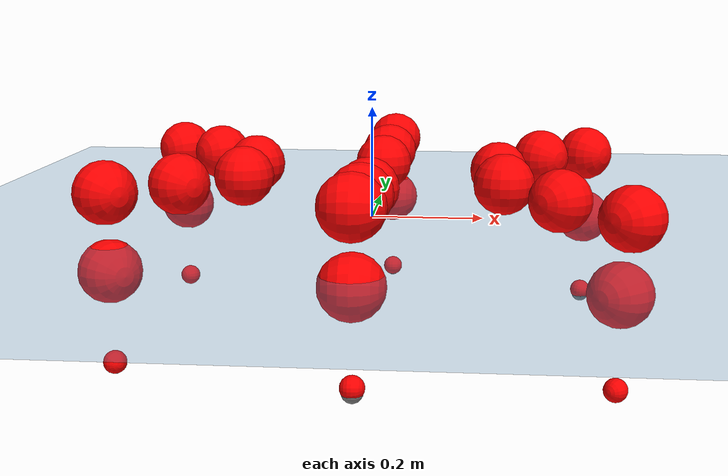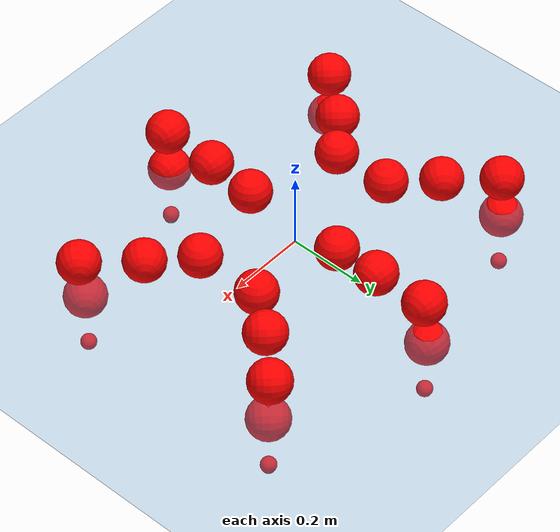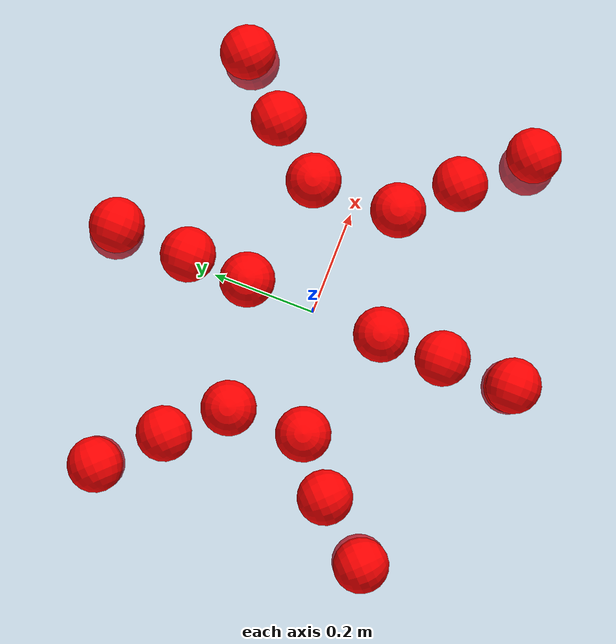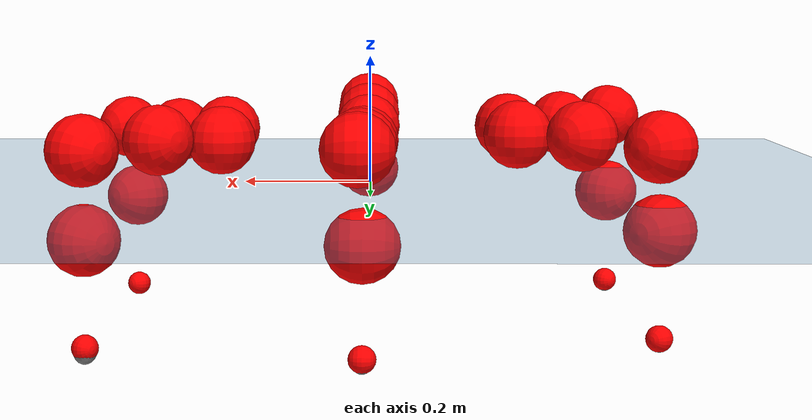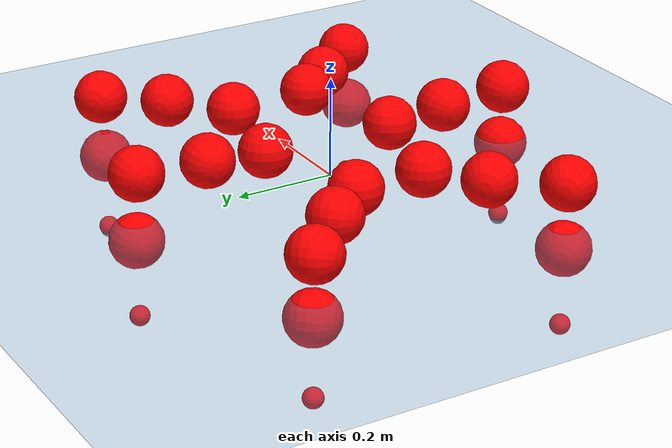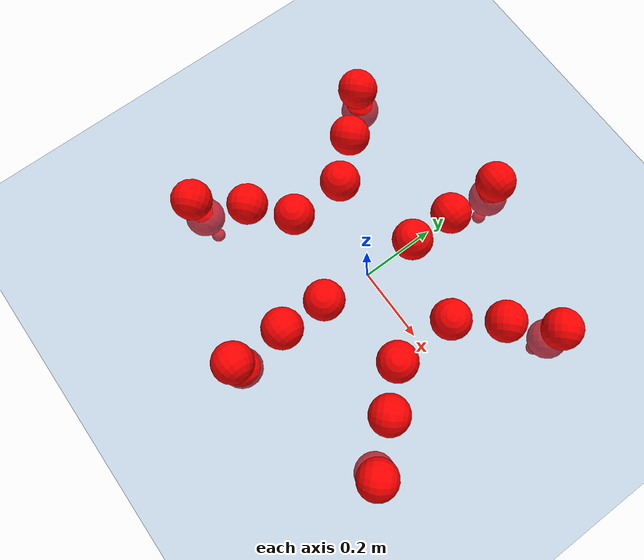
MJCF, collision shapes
<mujoco model="Golem">
  <compiler angle="radian" assetdir="assets" balanceinertia="true" inertiafromgeom="false"/>

  <option timestep="0.005" density="1.2" viscosity="2e-05"/>

  <size nkey="1"/>

  <visual>
    <quality shadowsize="8192"/>
    <map shadowclip="0.5"/>
  </visual>

  <default>
    <default class="/">
      <joint armature="0.01" damping="0.01" frictionloss="0.01"/>
      <geom contype="0" conaffinity="0" group="1" solref="-1000 -80"/>
      <site size="0.01 0.005 0.005" group="5"/>
      <general forcelimited="true" biastype="affine" gainprm="25" biasprm="0 -25 -0.5"/>
      <default class="visual">
        <geom type="mesh" group="2"/>
      </default>
      <default class="collision">
        <geom group="3"/>
      </default>
      <default class="foot">
        <geom size="0.01 0 0" condim="6" group="4" priority="1" solimp="0.015 1 0.01"/>
      </default>
      <default class="reward_collision_sphere">
        <geom group="5" rgba="1 0 0 1"/>
      </default>
    </default>
  </default>

  <asset>
    <texture type="skybox" colorspace="auto" name="//unnamed_texture_0" builtin="gradient" rgb1="0.95 0.95 0.95" rgb2="0.95 0.95 0.95" width="100" height="600"/>
    <texture type="2d" colorspace="auto" name="texplane" builtin="checker" rgb1="0.345 0.575 0.748" rgb2="0.345 0.575 0.748" markrgb="1 1 1" width="512" height="512"/>
    <material name="MatPlane" class="/" texture="texplane" texuniform="true" texrepeat="2 2" specular="0.9"/>
    <mesh name="body" class="/" file="body.stl" scale="0.001 0.001 0.001"/>
    <mesh name="coxa" class="/" file="coxa.stl" scale="0.001 0.001 0.001"/>
    <mesh name="femur" class="/" file="femur.stl" scale="0.001 0.001 0.001"/>
    <mesh name="tibia" class="/" file="tibia.stl" scale="0.001 0.001 0.001"/>
    <mesh name="tarsus" class="/" file="tarsus.stl" scale="0.001 0.001 0.001"/>
  </asset>

  <worldbody>
    <geom name="floor" class="/" size="100 100 0.125" type="plane" group="0" material="MatPlane"/>
    <light name="toplight_shadow" class="/" pos="0 0 5" dir="0.0990148 0.0990148 -0.990148" type="directional" ambient="0.04 0.04 0.04" diffuse="0.55 0.55 0.55" specular="0.12 0.12 0.12"/>
    <light name="toplight_fill" class="/" pos="0 0 5" dir="0.0990148 0.0990148 -0.990148" type="directional" castshadow="false" ambient="0.04 0.04 0.04" diffuse="0.3 0.3 0.3" specular="0.08 0.08 0.08"/>
    <body name="trunk" pos="0.00519031 0.00440138 0.000356171" quat="0.999999 -0.000666284 0.000387264 0.00107878">
      <inertial pos="-0.00505187 0.000992225 0.00993147" quat="0.999735 -0.00177949 0.0173944 -0.0149687" mass="8.05952" diaginertia="0.0666841 0.0386754 0.0205038"/>
      <joint name="//unnamed_joint_0" type="free"/>
      <geom name="//unnamed_geom_1" class="/" pos="0 0 0.0757278" quat="1 0 0 0" type="mesh" rgba="0.9 0.9 0.9 1" mesh="body"/>
      <site name="imu" class="/" pos="0.153261 -0.025817 0.111304" size="0.0132407"/>
      <camera name="track" class="/" pos="0 -2.6423 0" quat="0.707107 0.707107 0 0" mode="trackcom"/>
      <camera name="ego_camera" class="/" pos="0.190815 0 0.118325" quat="-0.5 -0.5 0.5 0.5"/>
      <body name="coxa_RR" pos="-0.259226 -0.102195 0.0836693" quat="0.382719 -0.000260055 0.000634021 -0.923865">
        <inertial pos="-0.000544711 0.000748537 -0.00157736" quat="0.999976 0.00416569 -0.00259181 -0.0049178" mass="0.460513" diaginertia="0.0718125 0.0407966 0.0262856"/>
        <joint name="coxa_joint_RR" class="/" pos="0 0 0" axis="-0.00192772 -0.00722656 -0.999972" stiffness="0.0109423" range="-3.13523 3.18801" armature="0.0128707" damping="0.0188829" frictionloss="0.0122459"/>
        <geom name="//unnamed_geom_2" class="/" type="mesh" rgba="0.2 0.2 0.2 1" mesh="coxa"/>
        <geom name="//unnamed_geom_3" class="reward_collision_sphere" size="0.0529628" pos="-0.0440342 0 0"/>
        <body name="femur_RR" pos="0.0806358 -0.0109891 -0.00152287" quat="0.501001 -0.500111 0.498944 0.499942">
          <inertial pos="0.0102273 -0.000135015 0.0113515" quat="0.998609 0.00205628 -0.0352743 0.039142" mass="0.508111" diaginertia="0.072623 0.0428703 0.0248457"/>
          <joint name="femur_joint_RR" class="/" pos="0 0 0" axis="-0.0163038 4.26916e-05 -0.999867" range="-3.12397 3.12659" armature="0.011915" damping="0.000744692" frictionloss="0.0133084"/>
          <geom name="//unnamed_geom_4" class="/" type="mesh" rgba="0.9 0.9 0.9 1" mesh="femur"/>
          <geom name="//unnamed_geom_5" class="reward_collision_sphere" size="0.0529628"/>
          <body name="tibia_RR" pos="-0.00369553 -0.14291 0.0101145" quat="-0.000940898 0.999999 -0.000356575 2.74956e-05">
            <inertial pos="0.00161133 0.000907067 0.0080329" quat="0.999766 0.0190832 -0.00616622 -0.00815305" mass="0.382988" diaginertia="0.057809 0.0316103 0.0199464"/>
            <joint name="tibia_joint_RR" class="/" pos="0 0 0" axis="-0.0224554 -0.0282994 0.999347" stiffness="0.0209074" range="-3.04932 3.12723" armature="0.015163" damping="0.000793309" frictionloss="0.0176658"/>
            <geom name="//unnamed_geom_6" class="/" type="mesh" rgba="0.2 0.2 0.2 1" mesh="tibia"/>
            <geom name="//unnamed_geom_7" class="reward_collision_sphere" size="0.0529628"/>
            <body name="tarsus_RR" pos="0.131469 -0.00268435 0.000931381" quat="1 0.000701938 -0.000268363 -4.45191e-05">
              <inertial pos="0.0912297 -0.000118107 0.00220857" quat="0.482976 0.46719 0.511201 0.535856" mass="0.421839" diaginertia="0.0699672 0.0437527 0.0221096"/>
              <joint name="tarsus_joint_RR" class="/" pos="0 0 0" axis="0.0540543 0.00527138 0.998524" range="-3.17137 3.24013" armature="0.0148995" damping="0.0288404" frictionloss="0.0127142"/>
              <geom name="//unnamed_geom_8" class="/" type="mesh" rgba="0.9 0.9 0.9 1" mesh="tarsus"/>
              <geom name="foot_1" class="foot" size="0.0138364" pos="0.164394 0 0" quat="0 -0.707107 0 0.707107"/>
              <geom name="//unnamed_geom_10" class="reward_collision_sphere" size="0.0529628"/>
              <geom name="//unnamed_geom_11" class="reward_collision_sphere" size="0.019861" pos="0.157789 0 0"/>
              <site name="foot_1" class="foot" pos="0.164394 0 0" quat="0 -0.707107 0 0.707107" size="0.0132407"/>
            </body>
          </body>
        </body>
      </body>
      <body name="coxa_RM" pos="-0.00107839 -0.184373 0.0785422" quat="0.706594 -0.00420415 -0.00340691 -0.707599">
        <inertial pos="0.00732286 0.00158889 0.00908068" quat="0.999494 -0.014063 0.0276937 0.0069037" mass="0.460527" diaginertia="0.0813862 0.0403866 0.0242791"/>
        <joint name="coxa_joint_RM" class="/" pos="0 0 0" axis="0.0158843 0.0101177 -0.999823" range="-3.14349 3.11492" armature="0.0138829" damping="0.0073832" frictionloss="0.0149951"/>
        <geom name="//unnamed_geom_12" class="/" type="mesh" rgba="0.2 0.2 0.2 1" mesh="coxa"/>
        <geom name="//unnamed_geom_13" class="reward_collision_sphere" size="0.0529628" pos="-0.0440342 0 0"/>
        <body name="femur_RM" pos="0.0796584 -0.000960279 0.0106351" quat="0.499125 -0.50025 0.49828 0.502336">
          <inertial pos="-0.00943408 0.00076251 -1.10773e-05" quat="0.998721 -0.0118591 -0.00747995 -0.0485708" mass="0.463001" diaginertia="0.0672633 0.0435796 0.0228564"/>
          <joint name="femur_joint_RM" class="/" pos="0 0 0" axis="0.0246309 0.0268401 -0.999336" stiffness="0.0209794" range="-3.10439 3.11962" armature="0.0120964" damping="0.00319668" frictionloss="0.0123362"/>
          <geom name="//unnamed_geom_14" class="/" type="mesh" rgba="0.9 0.9 0.9 1" mesh="femur"/>
          <geom name="//unnamed_geom_15" class="reward_collision_sphere" size="0.0529628"/>
          <body name="tibia_RM" pos="-0.00824842 -0.14161 -0.00108689" quat="-1.07769e-05 1 -5.88163e-05 0.000304485">
            <inertial pos="0.0101888 -0.00226062 0.00451862" quat="0.999994 -0.00275955 -0.00219374 -0.000183832" mass="0.437205" diaginertia="0.0618865 0.0430367 0.0259325"/>
            <joint name="tibia_joint_RM" class="/" pos="0 0 0" axis="0.000291478 -0.0264302 0.999651" range="-3.10404 3.18263" armature="0.0136022" damping="0.021226" frictionloss="0.0145731"/>
            <geom name="//unnamed_geom_16" class="/" type="mesh" rgba="0.2 0.2 0.2 1" mesh="tibia"/>
            <geom name="//unnamed_geom_17" class="reward_collision_sphere" size="0.0529628"/>
            <body name="tarsus_RM" pos="0.120638 -0.00236163 0.000562154" quat="1 0.000802812 0.000241367 -0.00029076">
              <inertial pos="0.0883698 0.00124954 -0.00124947" quat="0.500019 0.500227 0.499806 0.499948" mass="0.465038" diaginertia="0.0739832 0.0389723 0.0209919"/>
              <joint name="tarsus_joint_RM" class="/" pos="0 0 0" axis="0.0245612 0.0218687 0.999459" range="-3.10597 3.13097" armature="0.0138767" damping="0.0115761" frictionloss="0.0143114"/>
              <geom name="//unnamed_geom_18" class="/" type="mesh" rgba="0.9 0.9 0.9 1" mesh="tarsus"/>
              <geom name="foot_2" class="foot" size="0.017558" pos="0.164394 0 0" quat="0 -0.707107 0 0.707107"/>
              <geom name="//unnamed_geom_20" class="reward_collision_sphere" size="0.0529628"/>
              <geom name="//unnamed_geom_21" class="reward_collision_sphere" size="0.019861" pos="0.157789 0 0"/>
              <site name="foot_2" class="foot" pos="0.164394 0 0" quat="0 -0.707107 0 0.707107" size="0.0132407"/>
            </body>
          </body>
        </body>
      </body>
      <body name="coxa_RF" pos="0.260219 -0.117838 0.0784572" quat="0.923856 -2.32729e-05 3.67737e-05 -0.382741">
        <inertial pos="0.0110052 0.000703683 0.00219003" quat="0.999265 -0.017019 0.0342765 -0.00229577" mass="0.383998" diaginertia="0.0624979 0.0436889 0.0224264"/>
        <joint name="coxa_joint_RF" class="/" pos="0 0 0" axis="0.00168679 -0.0110512 -0.999938" range="-3.08851 3.12963" armature="0.00931201" damping="0.0142551" frictionloss="0.0141904"/>
        <geom name="//unnamed_geom_22" class="/" type="mesh" rgba="0.2 0.2 0.2 1" mesh="coxa"/>
        <geom name="//unnamed_geom_23" class="reward_collision_sphere" size="0.0529628" pos="-0.0440342 0 0"/>
        <body name="femur_RF" pos="0.0835521 -0.00173729 -0.00934578" quat="0.499515 -0.500298 0.499872 0.500315">
          <inertial pos="-0.00419561 -0.0101281 -0.00375135" quat="0.99997 -0.00554993 0.00352383 0.0040519" mass="0.499575" diaginertia="0.0643473 0.0443828 0.0230117"/>
          <joint name="femur_joint_RF" class="/" pos="0 0 0" axis="-0.0226522 0.00852724 -0.999707" stiffness="0.0487376" range="-3.12438 3.24567" armature="0.0137358" damping="0" frictionloss="0.0135668"/>
          <geom name="//unnamed_geom_24" class="/" type="mesh" rgba="0.9 0.9 0.9 1" mesh="femur"/>
          <geom name="//unnamed_geom_25" class="reward_collision_sphere" size="0.0529628"/>
          <body name="tibia_RF" pos="0.00400407 -0.14963 -0.00731312" quat="0.000649547 0.999999 0.000770278 6.49838e-05">
            <inertial pos="0.0088615 0.00585325 -0.00775018" quat="0.999783 -0.0191124 -0.00741075 0.00374078" mass="0.427126" diaginertia="0.0667453 0.0408465 0.0235676"/>
            <joint name="tibia_joint_RF" class="/" pos="0 0 0" axis="0.000288778 -0.000171742 1" range="-3.11184 3.25952" armature="0.0118985" damping="0.0626837" frictionloss="0.0143793"/>
            <geom name="//unnamed_geom_26" class="/" type="mesh" rgba="0.2 0.2 0.2 1" mesh="tibia"/>
            <geom name="//unnamed_geom_27" class="reward_collision_sphere" size="0.0529628"/>
            <body name="tarsus_RF" pos="0.121763 -0.0089051 0.00835805" quat="0.999996 0.00185839 0.000381485 0.00195588">
              <inertial pos="0.0860861 -0.000770655 -0.00229611" quat="0.500173 0.50013 0.499667 0.50003" mass="0.451209" diaginertia="0.0653287 0.0346685 0.0251174"/>
              <joint name="tarsus_joint_RF" class="/" pos="0 0 0" axis="0.0097981 -0.00131561 0.999951" stiffness="0.00794921" range="-3.06629 3.15345" armature="0.00872911" damping="0.00492708" frictionloss="0.00590498"/>
              <geom name="//unnamed_geom_28" class="/" type="mesh" rgba="0.9 0.9 0.9 1" mesh="tarsus"/>
              <geom name="foot_3" class="foot" size="0.00855366" pos="0.164394 0 0" quat="0 -0.707107 0 0.707107"/>
              <geom name="//unnamed_geom_30" class="reward_collision_sphere" size="0.0529628"/>
              <geom name="//unnamed_geom_31" class="reward_collision_sphere" size="0.019861" pos="0.157789 0 0"/>
              <site name="foot_3" class="foot" pos="0.164394 0 0" quat="0 -0.707107 0 0.707107" size="0.0132407"/>
            </body>
          </body>
        </body>
      </body>
      <body name="coxa_LR" pos="-0.263575 0.108388 0.0826676" quat="0.385401 0.00323371 -0.000834015 0.922743">
        <inertial pos="-0.000779872 -0.000288888 0.010579" quat="0.999437 0.033212 0.00424561 -0.00195268" mass="0.582912" diaginertia="0.0778219 0.0461225 0.0267229"/>
        <joint name="coxa_joint_LR" class="/" pos="0 0 0" axis="-0.000226591 0.00100825 -0.999999" range="-3.1196 2.92475" armature="0.00873332" damping="0.0114969" frictionloss="0.0202978"/>
        <geom name="//unnamed_geom_32" class="/" type="mesh" rgba="0.2 0.2 0.2 1" mesh="coxa"/>
        <geom name="//unnamed_geom_33" class="reward_collision_sphere" size="0.0529628" pos="-0.0440342 0 0"/>
        <body name="femur_LR" pos="0.0857416 -0.00477653 0.00458836" quat="0.500632 -0.499116 0.500242 0.500009">
          <inertial pos="-0.00150116 -0.0015604 -0.00103182" quat="0.999784 0.00983691 -0.0182177 0.00171475" mass="0.485581" diaginertia="0.0736797 0.0363781 0.0248116"/>
          <joint name="femur_joint_LR" class="/" pos="0 0 0" axis="-0.00384841 -0.00672496 0.99997" stiffness="0.0252297" range="-3.10062 3.27213" armature="0.00990407" damping="0.00362636" frictionloss="0.0139208"/>
          <geom name="//unnamed_geom_34" class="/" type="mesh" rgba="0.9 0.9 0.9 1" mesh="femur"/>
          <geom name="//unnamed_geom_35" class="reward_collision_sphere" size="0.0529628"/>
          <body name="tibia_LR" pos="0.00747372 -0.141827 0.00147674" quat="0.000195118 0.999994 -0.0031672 -0.00111973">
            <inertial pos="-0.00492065 -0.00968635 0.000905958" quat="0.999383 0.0193705 0.0289619 0.00437659" mass="0.489553" diaginertia="0.0576428 0.0358535 0.0257999"/>
            <joint name="tibia_joint_LR" class="/" pos="0 0 0" axis="0.0134084 -0.0115792 -0.999843" range="-3.16572 3.12514" armature="0.0123015" damping="0" frictionloss="0.0105396"/>
            <geom name="//unnamed_geom_36" class="/" type="mesh" rgba="0.2 0.2 0.2 1" mesh="tibia"/>
            <geom name="//unnamed_geom_37" class="reward_collision_sphere" size="0.0529628"/>
            <body name="tarsus_LR" pos="0.120446 0.00216338 0.00328047" quat="0.999999 0.000506688 0.00112561 0.000604037">
              <inertial pos="0.0913255 0.00489186 0.00154131" quat="0.512486 0.494241 0.498916 0.494132" mass="0.523571" diaginertia="0.077292 0.0468741 0.0267471"/>
              <joint name="tarsus_joint_LR" class="/" pos="0 0 0" axis="0.00474175 -0.0046536 -0.999978" range="-3.15199 3.13674" armature="0.0207757" damping="0.0310531" frictionloss="0.0143291"/>
              <geom name="//unnamed_geom_38" class="/" type="mesh" rgba="0.9 0.9 0.9 1" mesh="tarsus"/>
              <geom name="foot_4" class="foot" size="0.013251" pos="0.164394 0 0" quat="0.707107 0 -0.707107 0"/>
              <geom name="//unnamed_geom_40" class="reward_collision_sphere" size="0.0529628"/>
              <geom name="//unnamed_geom_41" class="reward_collision_sphere" size="0.019861" pos="0.157789 0 0"/>
              <site name="foot_4" class="foot" pos="0.164394 0 0" quat="0.707107 0 -0.707107 0" size="0.0132407"/>
            </body>
          </body>
        </body>
      </body>
      <body name="coxa_LM" pos="0.00560009 0.175675 0.0780604" quat="0.711232 0.000444363 0.00085114 0.702957">
        <inertial pos="-0.00764072 0.00867442 0.00442277" quat="0.9993 -0.0258715 0.0176109 0.0205175" mass="0.454297" diaginertia="0.0707683 0.038814 0.0216565"/>
        <joint name="coxa_joint_LM" class="/" pos="0 0 0" axis="-0.00158393 -0.00165926 -0.999997" range="-3.17371 3.16255" armature="0.00627332" damping="0.0243375" frictionloss="0.0123763"/>
        <geom name="//unnamed_geom_42" class="/" type="mesh" rgba="0.2 0.2 0.2 1" mesh="coxa"/>
        <geom name="//unnamed_geom_43" class="reward_collision_sphere" size="0.0529628" pos="-0.0440342 0 0"/>
        <body name="femur_LM" pos="0.0767601 -0.00245357 0.00581007" quat="0.498568 -0.502247 0.500715 0.49846">
          <inertial pos="0.00727356 0.000376671 0.00877517" quat="0.999761 0.00212708 -0.000316051 0.0217468" mass="0.384776" diaginertia="0.0631784 0.0378694 0.0215818"/>
          <joint name="femur_joint_LM" class="/" pos="0 0 0" axis="-0.0090795 0.00886338 0.999919" range="-3.23788 3.12384" armature="0.0096209" damping="0.0189021" frictionloss="0.0128999"/>
          <geom name="//unnamed_geom_44" class="/" type="mesh" rgba="0.9 0.9 0.9 1" mesh="femur"/>
          <geom name="//unnamed_geom_45" class="reward_collision_sphere" size="0.0529628"/>
          <body name="tibia_LM" pos="-0.005539 -0.144338 -0.00195972" quat="-0.000500403 1 -7.78137e-05 -1.50979e-05">
            <inertial pos="-0.0103113 -0.0109218 -0.0113124" quat="0.999977 -0.00224834 0.00564005 -0.00306849" mass="0.454864" diaginertia="0.0691055 0.0435796 0.0209437"/>
            <joint name="tibia_joint_LM" class="/" pos="0 0 0" axis="-0.0165395 0.0116297 -0.999796" stiffness="0.0317753" range="-3.15511 3.16468" armature="0.00951894" damping="0" frictionloss="0.0176102"/>
            <geom name="//unnamed_geom_46" class="/" type="mesh" rgba="0.2 0.2 0.2 1" mesh="tibia"/>
            <geom name="//unnamed_geom_47" class="reward_collision_sphere" size="0.0529628"/>
            <body name="tarsus_LM" pos="0.13105 0.00801855 -0.00711863" quat="0.999997 -0.00251108 -0.000393527 -0.000652152">
              <inertial pos="0.0861258 -0.00232499 -0.00470046" quat="0.502475 0.499353 0.49495 0.50318" mass="0.402281" diaginertia="0.0663196 0.0298079 0.020808"/>
              <joint name="tarsus_joint_LM" class="/" pos="0 0 0" axis="-0.00323866 -0.0357121 -0.999357" range="-2.89826 3.16291" armature="0.0123481" damping="0" frictionloss="0.0135451"/>
              <geom name="//unnamed_geom_48" class="/" type="mesh" rgba="0.9 0.9 0.9 1" mesh="tarsus"/>
              <geom name="foot_5" class="foot" size="0.0141688" pos="0.164394 0 0" quat="0.707107 0 -0.707107 0"/>
              <geom name="//unnamed_geom_50" class="reward_collision_sphere" size="0.0529628"/>
              <geom name="//unnamed_geom_51" class="reward_collision_sphere" size="0.019861" pos="0.157789 0 0"/>
              <site name="foot_5" class="foot" pos="0.164394 0 0" quat="0.707107 0 -0.707107 0" size="0.0132407"/>
            </body>
          </body>
        </body>
      </body>
      <body name="coxa_LF" pos="0.255866 0.113703 0.0742006" quat="0.923284 -0.00414188 -0.00083893 0.384094">
        <inertial pos="4.59612e-05 -0.0105927 -0.00202262" quat="0.999962 -0.00325476 0.0071082 0.00389443" mass="0.437512" diaginertia="0.0624567 0.0319307 0.0204803"/>
        <joint name="coxa_joint_LF" class="/" pos="0 0 0" axis="0.0240883 -0.00525867 -0.999696" range="-3.12541 3.17018" armature="0.00588388" damping="0.00685293" frictionloss="0.012599"/>
        <geom name="//unnamed_geom_52" class="/" type="mesh" rgba="0.2 0.2 0.2 1" mesh="coxa"/>
        <geom name="//unnamed_geom_53" class="reward_collision_sphere" size="0.0529628" pos="-0.0440342 0 0"/>
        <body name="femur_LF" pos="0.0890885 0.0121564 0.00966639" quat="0.502676 -0.49996 0.497584 0.499767">
          <inertial pos="-0.00550208 -0.000354058 -0.0112879" quat="0.999135 -0.013677 -0.0184637 0.0346505" mass="0.471438" diaginertia="0.0722108 0.0344086 0.0227389"/>
          <joint name="femur_joint_LF" class="/" pos="0 0 0" axis="0.0286249 -0.0186003 0.999417" stiffness="0.0378589" range="-3.17005 3.34096" armature="0.0136597" damping="0.0307009" frictionloss="0.0130046"/>
          <geom name="//unnamed_geom_54" class="/" type="mesh" rgba="0.9 0.9 0.9 1" mesh="femur"/>
          <geom name="//unnamed_geom_55" class="reward_collision_sphere" size="0.0529628"/>
          <body name="tibia_LF" pos="0.0063291 -0.139108 0.00179188" quat="0.000791798 0.999991 -0.0030197 -0.00288152">
            <inertial pos="-0.000129662 0.0096968 0.000802389" quat="0.999994 0.000322732 -0.000196789 0.00352777" mass="0.451497" diaginertia="0.0711379 0.0399408 0.023489"/>
            <joint name="tibia_joint_LF" class="/" pos="0 0 0" axis="0.0377597 -0.00447395 -0.999277" range="-2.98512 3.17156" armature="0.0100517" damping="0.0142403" frictionloss="0.00723363"/>
            <geom name="//unnamed_geom_56" class="/" type="mesh" rgba="0.2 0.2 0.2 1" mesh="tibia"/>
            <geom name="//unnamed_geom_57" class="reward_collision_sphere" size="0.0529628"/>
            <body name="tarsus_LF" pos="0.130074 -0.00508219 0.00271176" quat="0.999983 -0.00525328 0.00246488 0.000383378">
              <inertial pos="0.093346 -0.000100829 -0.00126643" quat="0.494542 0.500606 0.504668 0.500132" mass="0.452583" diaginertia="0.0725878 0.0422852 0.0261902"/>
              <joint name="tarsus_joint_LF" class="/" pos="0 0 0" axis="-0.00511806 0.0562769 -0.998402" range="-3.17483 3.29095" armature="0.0120704" damping="0.0555182" frictionloss="0.0109079"/>
              <geom name="//unnamed_geom_58" class="/" type="mesh" rgba="0.9 0.9 0.9 1" mesh="tarsus"/>
              <geom name="foot_6" class="foot" size="0.0170693" pos="0.164394 0 0" quat="0.707107 0 -0.707107 0"/>
              <geom name="//unnamed_geom_60" class="reward_collision_sphere" size="0.0529628"/>
              <geom name="//unnamed_geom_61" class="reward_collision_sphere" size="0.019861" pos="0.157789 0 0"/>
              <site name="foot_6" class="foot" pos="0.164394 0 0" quat="0.707107 0 -0.707107 0" size="0.0132407"/>
            </body>
          </body>
        </body>
      </body>
    </body>
  </worldbody>

  <contact>
    <pair class="/" geom1="floor" geom2="foot_1" name="//unnamed_contact_0"/>
    <pair class="/" geom1="floor" geom2="foot_2" name="//unnamed_contact_1"/>
    <pair class="/" geom1="floor" geom2="foot_3" name="//unnamed_contact_2"/>
    <pair class="/" geom1="floor" geom2="foot_4" name="//unnamed_contact_3"/>
    <pair class="/" geom1="floor" geom2="foot_5" name="//unnamed_contact_4"/>
    <pair class="/" geom1="floor" geom2="foot_6" name="//unnamed_contact_5"/>
  </contact>

  <actuator>
    <general name="coxa_joint_RR" class="/" joint="coxa_joint_RR" forcerange="-13.2214 13.2214" gainprm="30.6293" biasprm="0 -30.6293 -0.736754"/>
    <general name="femur_joint_RR" class="/" joint="femur_joint_RR" forcerange="-8.54503 8.54503" gainprm="30.6293" biasprm="0 -30.6293 -0.736754"/>
    <general name="tibia_joint_RR" class="/" joint="tibia_joint_RR" forcerange="-13.6279 13.6279" gainprm="30.6293" biasprm="0 -30.6293 -0.736754"/>
    <general name="tarsus_joint_RR" class="/" joint="tarsus_joint_RR" forcerange="-8.2287 8.2287" gainprm="30.6293" biasprm="0 -30.6293 -0.736754"/>
    <general name="coxa_joint_RM" class="/" joint="coxa_joint_RM" forcerange="-9.53553 9.53553" gainprm="30.6293" biasprm="0 -30.6293 -0.736754"/>
    <general name="femur_joint_RM" class="/" joint="femur_joint_RM" forcerange="-9.81018 9.81018" gainprm="30.6293" biasprm="0 -30.6293 -0.736754"/>
    <general name="tibia_joint_RM" class="/" joint="tibia_joint_RM" forcerange="-12.8408 12.8408" gainprm="30.6293" biasprm="0 -30.6293 -0.736754"/>
    <general name="tarsus_joint_RM" class="/" joint="tarsus_joint_RM" forcerange="-5.85344 5.85344" gainprm="30.6293" biasprm="0 -30.6293 -0.736754"/>
    <general name="coxa_joint_RF" class="/" joint="coxa_joint_RF" forcerange="-9.65511 9.65511" gainprm="30.6293" biasprm="0 -30.6293 -0.736754"/>
    <general name="femur_joint_RF" class="/" joint="femur_joint_RF" forcerange="-9.04238 9.04238" gainprm="30.6293" biasprm="0 -30.6293 -0.736754"/>
    <general name="tibia_joint_RF" class="/" joint="tibia_joint_RF" forcerange="-6.22441 6.22441" gainprm="30.6293" biasprm="0 -30.6293 -0.736754"/>
    <general name="tarsus_joint_RF" class="/" joint="tarsus_joint_RF" forcerange="-8.62553 8.62553" gainprm="30.6293" biasprm="0 -30.6293 -0.736754"/>
    <general name="coxa_joint_LR" class="/" joint="coxa_joint_LR" forcerange="-9.5275 9.5275" gainprm="30.6293" biasprm="0 -30.6293 -0.736754"/>
    <general name="femur_joint_LR" class="/" joint="femur_joint_LR" forcerange="-12.3543 12.3543" gainprm="30.6293" biasprm="0 -30.6293 -0.736754"/>
    <general name="tibia_joint_LR" class="/" joint="tibia_joint_LR" forcerange="-10.6714 10.6714" gainprm="30.6293" biasprm="0 -30.6293 -0.736754"/>
    <general name="tarsus_joint_LR" class="/" joint="tarsus_joint_LR" forcerange="-11.6182 11.6182" gainprm="30.6293" biasprm="0 -30.6293 -0.736754"/>
    <general name="coxa_joint_LM" class="/" joint="coxa_joint_LM" forcerange="-10.674 10.674" gainprm="30.6293" biasprm="0 -30.6293 -0.736754"/>
    <general name="femur_joint_LM" class="/" joint="femur_joint_LM" forcerange="-9.9624 9.9624" gainprm="30.6293" biasprm="0 -30.6293 -0.736754"/>
    <general name="tibia_joint_LM" class="/" joint="tibia_joint_LM" forcerange="-11.9114 11.9114" gainprm="30.6293" biasprm="0 -30.6293 -0.736754"/>
    <general name="tarsus_joint_LM" class="/" joint="tarsus_joint_LM" forcerange="-9.63712 9.63712" gainprm="30.6293" biasprm="0 -30.6293 -0.736754"/>
    <general name="coxa_joint_LF" class="/" joint="coxa_joint_LF" forcerange="-10.3294 10.3294" gainprm="30.6293" biasprm="0 -30.6293 -0.736754"/>
    <general name="femur_joint_LF" class="/" joint="femur_joint_LF" forcerange="-9.49035 9.49035" gainprm="30.6293" biasprm="0 -30.6293 -0.736754"/>
    <general name="tibia_joint_LF" class="/" joint="tibia_joint_LF" forcerange="-7.66481 7.66481" gainprm="30.6293" biasprm="0 -30.6293 -0.736754"/>
    <general name="tarsus_joint_LF" class="/" joint="tarsus_joint_LF" forcerange="-10.6116 10.6116" gainprm="30.6293" biasprm="0 -30.6293 -0.736754"/>
  </actuator>

  <sensor>
    <gyro site="imu" name="imu_angular_velocity"/>
    <velocimeter site="imu" name="imu_linear_velocity"/>
    <framelinvel objtype="site" objname="foot_1" name="foot_1_global_linear_velocity"/>
    <framelinvel objtype="site" objname="foot_2" name="foot_2_global_linear_velocity"/>
    <framelinvel objtype="site" objname="foot_3" name="foot_3_global_linear_velocity"/>
    <framelinvel objtype="site" objname="foot_4" name="foot_4_global_linear_velocity"/>
    <framelinvel objtype="site" objname="foot_5" name="foot_5_global_linear_velocity"/>
    <framelinvel objtype="site" objname="foot_6" name="foot_6_global_linear_velocity"/>
  </sensor>

  <keyframe>
    <key name="home" qpos="0 0 0.1457 1 0 0 0 0 0 0 0 0 0 0 0 0 0 0 0 0 0 0 0 0 0 0 0 0 0 0 0"/>
  </keyframe>
</mujoco>
